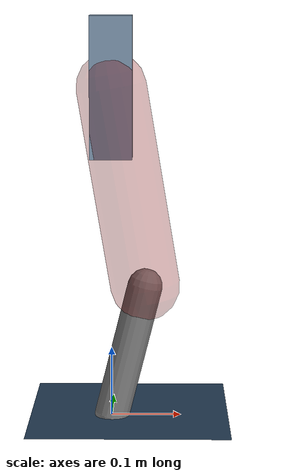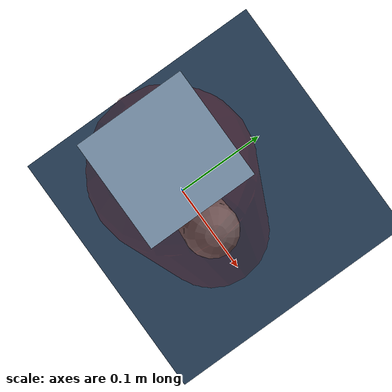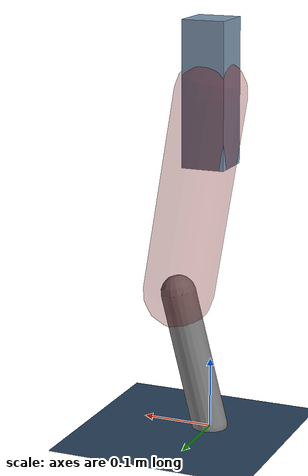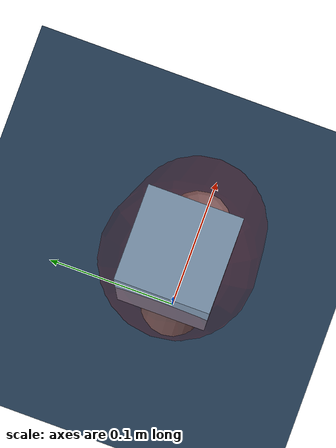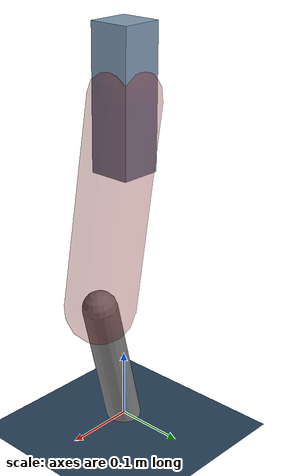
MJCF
<mujoco model="Hopper2D">
	<compiler inertiafromgeom="true" angle="radian" />
	<option timestep="0.001" integrator="implicit" cone="elliptic" solver="Newton" tolerance="1e-10" />

	<default>
		<geom contype="1" conaffinity="1" condim="3" friction="2 0.005 0.0001" solref="0.005 1" />
		<joint limited="true" damping="0.1" />
	</default>

	<asset>
		<texture name="skybox" type="skybox" builtin="gradient" rgb1=".4 .6 .8" rgb2="0 0 0" width="800" height="800" />
		<texture name="grid" type="2d" builtin="checker" rgb1=".1 .2 .3" rgb2=".2 .3 .4" width="300" height="300" mark="edge" markrgb=".2 .3 .4" />
		<material name="ground" texture="grid" texrepeat="1 1" texuniform="true" reflectance="0.1" />
		<material name="leg" rgba="0.5 0.6 0.7 1" />
	</asset>

	<worldbody>

		<geom name="floor" type="plane" size="5 5 0.25" material="ground" />

		<light directional="false" diffuse="0.8 0.8 0.8" specular="0.3 0.3 0.3" pos="0 0 2" dir="0 0 -1" />
		<light mode="targetbodycom" target="base" directional="false" diffuse="0.8 0.8 0.8" specular="0.3 0.3 0.3" pos="0 0 2" dir="0 0 -1" />

		<camera name="fixed" pos="0 -2 1" xyaxes="1 0 0 0 0 1" />
		<camera name="tracking" mode="trackcom" pos="0 -3 1" />

		<body name="root" pos="0 0 0.4772846467070706">
			<joint name="slide_x" type="slide" axis="1 0 0" range="-100 100" />
			<joint name="slide_z" type="slide" axis="0 0 1" range="0 10" />

			<body name="base" pos="0 0 0">
				<geom name="torso" type="box" size="0.03 0.03 0.1" mass="2.2039999999999997" material="leg" />

				<body name="link1" pos="0 0 0" euler="0 1.4036730933196244 0">
					<joint type="hinge" axis="0 -1 0" pos="0 0 0" name="hinge1" limited="true" range="-3.14 3.14" stiffness="0" damping="0.1" />
					<geom name="thigh" type="capsule" fromto="0 0 0 0.28966353307343173 0 0" size="0.05" rgba="0.5 0 0 0.3" mass="0.9608915392982658" />

					<body name="link2" pos="0.28966353307343173 0 0" euler="0 0.4134285927358106 0">
						<joint type="hinge" axis="0 -1 0" pos="0 0 0" name="hinge2" limited="true" range="-3.14 3.14" stiffness="0" damping="0.1" />
						<geom name="shank" type="capsule" fromto="0 0 0 0.19762111363363888 0 0" size="0.025" mass="0.3988968909069111" />

					</body>
				</body>
			</body>
		</body>
	</worldbody>

	<actuator>
		<motor name="torque1" joint="hinge1" ctrlrange="-62.26143194746749 62.26143194746749" ctrllimited="true" gear="1" />
		<motor name="torque2" joint="hinge2" ctrlrange="-81.79352229612738 81.79352229612738" ctrllimited="true" gear="1" />
	</actuator>
</mujoco>
